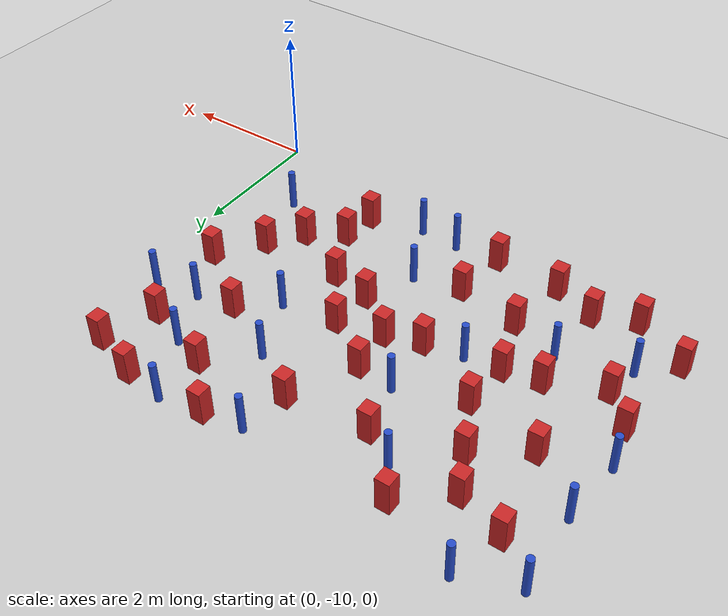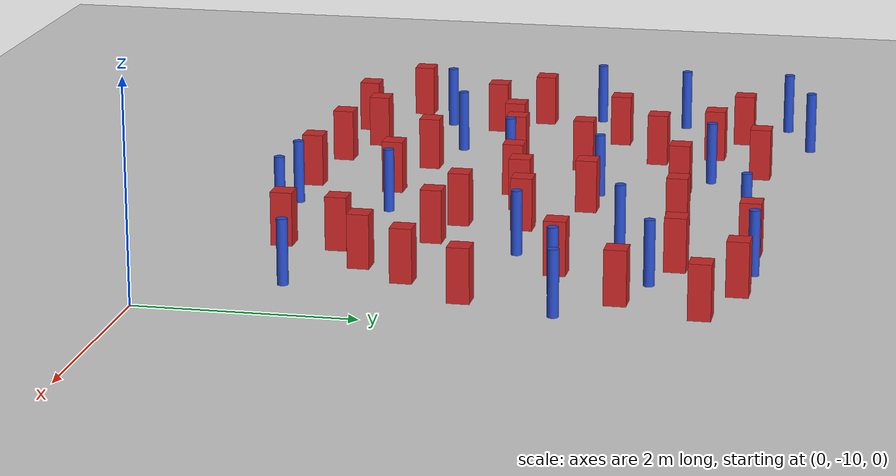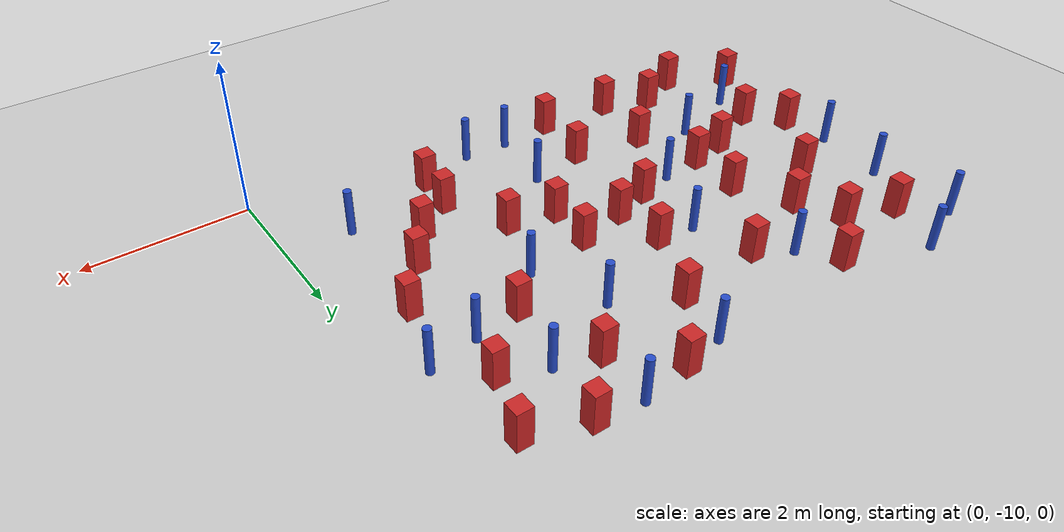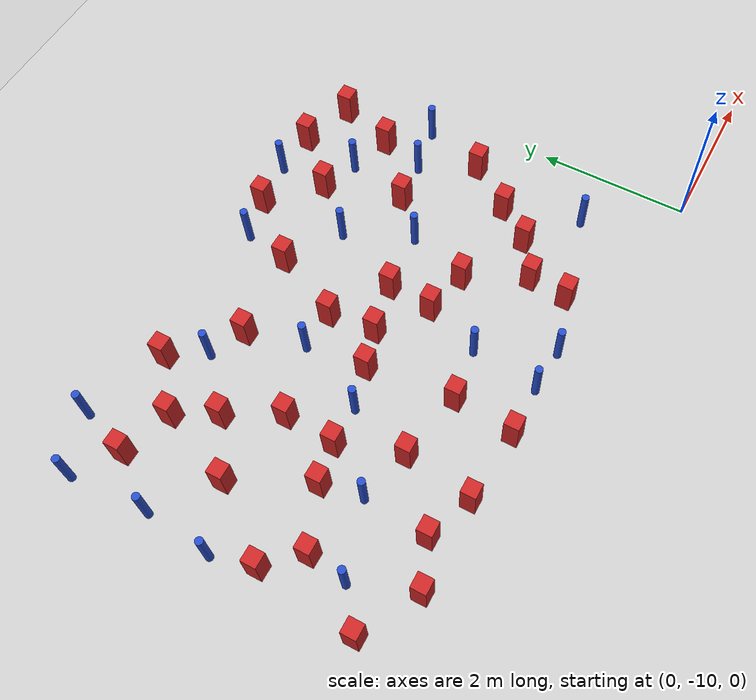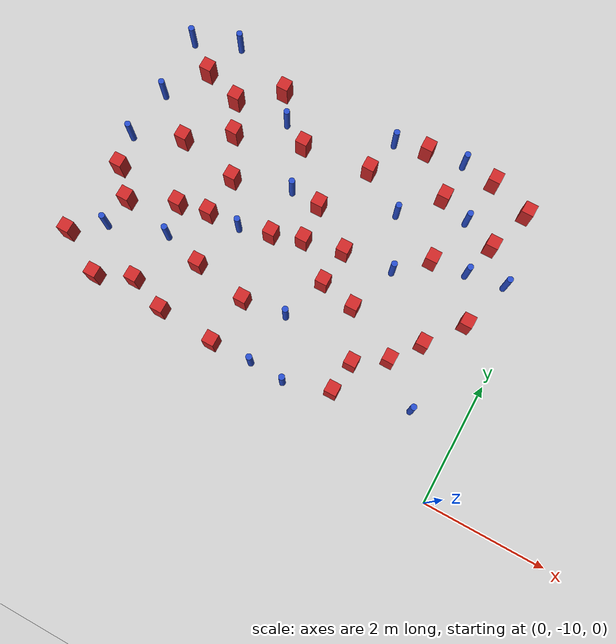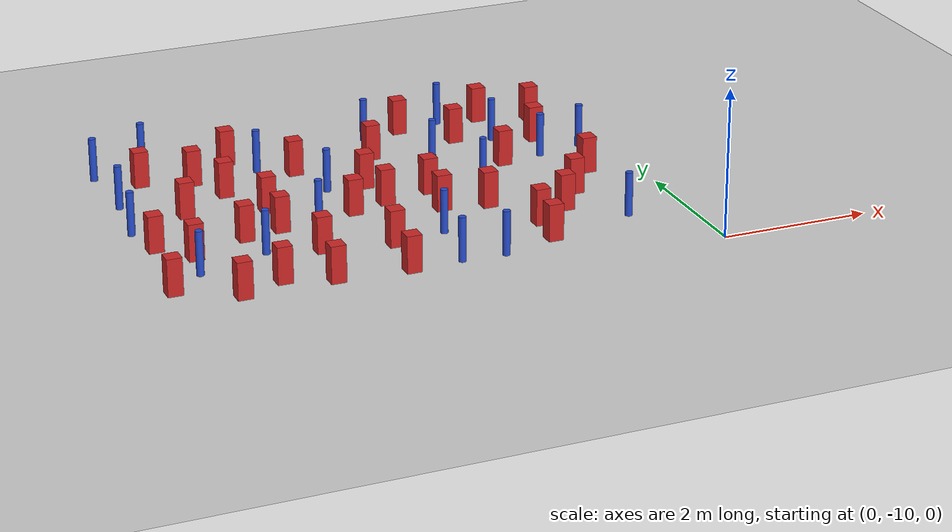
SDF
<sdf version="1.6">
 <world name="default">
  <model name="ground_plane">
   <static>1</static>
   <link name="link">
    <collision name="collision">
     <geometry><plane><normal>0 0 1</normal><size>100 100</size></plane></geometry>
     <surface><friction><ode><mu>100</mu><mu2>50</mu2></ode></friction></surface>
    </collision>
    <visual name="visual">
     <cast_shadows>0</cast_shadows>
     <geometry><plane><normal>0 0 1</normal><size>100 100</size></plane></geometry>
     <material>
      <ambient>1.0 1.0 1.0 1.0</ambient>
      <diffuse>0.8 0.8 0.8 1.0</diffuse>
      <specular>0.01 0.01 0.01 1.000000</specular>
     </material>
    </visual>
   </link>
  </model>
  <model name="square_post_obstacle0">
   <static>true</static>
   <pose>-5.41311014788 -6.22488817365 -6.11067671241e-07 -5.50515727128e-06 -8.79689657224e-07 2.37013304536e-05</pose>
   <link name="link">
    <pose>0 0 0.25 0 -0 0</pose>
    <inertial>
     <mass>100</mass>
     <inertia>
      <ixx>0.166667</ixx>
      <ixy>0</ixy>
      <ixz>0</ixz>
      <iyy>0.166667</iyy>
      <iyz>0</iyz>
      <izz>0.166667</izz>
     </inertia>
    </inertial>
    <collision name="collision"><geometry><box><size>.2 .2 .5</size></box></geometry></collision>
    <visual name="visual">
     <geometry><box><size>.2 .2 .5</size></box></geometry>
     <material>
      <script><name>Gazebo/Red</name><uri>file://media/materials/scripts/gazebo.material</uri></script>
     </material>
    </visual>
   </link>
  </model>
  <model name="square_post_obstacle6">
   <static>true</static>
   <pose>-1.96284381164 -8.66067256167 -6.11067671241e-07 -5.50515727128e-06 -8.79689657224e-07 2.37013304536e-05</pose>
   <link name="link">
    <pose>0 0 0.25 0 -0 0</pose>
    <inertial>
     <mass>100</mass>
     <inertia>
      <ixx>0.166667</ixx>
      <ixy>0</ixy>
      <ixz>0</ixz>
      <iyy>0.166667</iyy>
      <iyz>0</iyz>
      <izz>0.166667</izz>
     </inertia>
    </inertial>
    <collision name="collision"><geometry><box><size>.2 .2 .5</size></box></geometry></collision>
    <visual name="visual">
     <geometry><box><size>.2 .2 .5</size></box></geometry>
     <material>
      <script><name>Gazebo/Red</name><uri>file://media/materials/scripts/gazebo.material</uri></script>
     </material>
    </visual>
   </link>
  </model>
  <model name="square_post_obstacle13">
   <static>true</static>
   <pose>-3.61502706013 -6.64984049506 -6.11067671241e-07 -5.50515727128e-06 -8.79689657224e-07 2.37013304536e-05</pose>
   <link name="link">
    <pose>0 0 0.25 0 -0 0</pose>
    <inertial>
     <mass>100</mass>
     <inertia>
      <ixx>0.166667</ixx>
      <ixy>0</ixy>
      <ixz>0</ixz>
      <iyy>0.166667</iyy>
      <iyz>0</iyz>
      <izz>0.166667</izz>
     </inertia>
    </inertial>
    <collision name="collision"><geometry><box><size>.2 .2 .5</size></box></geometry></collision>
    <visual name="visual">
     <geometry><box><size>.2 .2 .5</size></box></geometry>
     <material>
      <script><name>Gazebo/Red</name><uri>file://media/materials/scripts/gazebo.material</uri></script>
     </material>
    </visual>
   </link>
  </model>
  <model name="pole_obstacle19">
   <static>true</static>
   <pose>-3.04301555067 -5.08760695318 -9.47619616065e-06 5.49618799738e-07 2.3631041406e-07 -1.55090534801e-07</pose>
   <link name="link">
    <pose>0 0 0.3 0 -0 0</pose>
    <inertial>
     <mass>1</mass>
     <inertia><ixx>0.145833</ixx><ixy>0</ixy><ixz>0</ixz><iyy>0.145833</iyy><iyz>0</iyz><izz>0.125</izz></inertia>
    </inertial>
    <collision name="collision">
     <geometry><cylinder><radius>0.05</radius><length>.6</length></cylinder></geometry>
    </collision>
    <visual name="visual">
     <geometry><cylinder><radius>0.05</radius><length>.6</length></cylinder></geometry>
     <material>
      <script><name>Gazebo/Blue</name><uri>file://media/materials/scripts/gazebo.material</uri></script>
     </material>
    </visual>
   </link>
  </model>
  <model name="pole_obstacle23">
   <static>true</static>
   <pose>-1.02687091711 -6.53148259421 -9.47619616065e-06 5.49618799737e-07 2.36310414062e-07 -1.55090534799e-07</pose>
   <link name="link">
    <pose>0 0 0.3 0 -0 0</pose>
    <inertial>
     <mass>1</mass>
     <inertia><ixx>0.145833</ixx><ixy>0</ixy><ixz>0</ixz><iyy>0.145833</iyy><iyz>0</iyz><izz>0.125</izz></inertia>
    </inertial>
    <collision name="collision">
     <geometry><cylinder><radius>0.05</radius><length>.6</length></cylinder></geometry>
    </collision>
    <visual name="visual">
     <geometry><cylinder><radius>0.05</radius><length>.6</length></cylinder></geometry>
     <material>
      <script><name>Gazebo/Blue</name><uri>file://media/materials/scripts/gazebo.material</uri></script>
     </material>
    </visual>
   </link>
  </model>
  <model name="pole_obstacle28">
   <static>true</static>
   <pose>-0.816552920662 -8.87406643641 -9.47619616065e-06 5.49618799737e-07 2.36310414038e-07 -1.55090534813e-07</pose>
   <link name="link">
    <pose>0 0 0.3 0 -0 0</pose>
    <inertial>
     <mass>1</mass>
     <inertia><ixx>0.145833</ixx><ixy>0</ixy><ixz>0</ixz><iyy>0.145833</iyy><iyz>0</iyz><izz>0.125</izz></inertia>
    </inertial>
    <collision name="collision">
     <geometry><cylinder><radius>0.05</radius><length>.6</length></cylinder></geometry>
    </collision>
    <visual name="visual">
     <geometry><cylinder><radius>0.05</radius><length>.6</length></cylinder></geometry>
     <material>
      <script><name>Gazebo/Blue</name><uri>file://media/materials/scripts/gazebo.material</uri></script>
     </material>
    </visual>
   </link>
  </model>
  <model name="square_post_obstacle22">
   <static>true</static>
   <pose>-4.32448612575 -5.86166421642 -6.11067671241e-07 -5.50515727128e-06 -8.79689657224e-07 2.37013304536e-05</pose>
   <link name="link">
    <pose>0 0 0.25 0 -0 0</pose>
    <inertial>
     <mass>100</mass>
     <inertia>
      <ixx>0.166667</ixx>
      <ixy>0</ixy>
      <ixz>0</ixz>
      <iyy>0.166667</iyy>
      <iyz>0</iyz>
      <izz>0.166667</izz>
     </inertia>
    </inertial>
    <collision name="collision"><geometry><box><size>.2 .2 .5</size></box></geometry></collision>
    <visual name="visual">
     <geometry><box><size>.2 .2 .5</size></box></geometry>
     <material>
      <script><name>Gazebo/Red</name><uri>file://media/materials/scripts/gazebo.material</uri></script>
     </material>
    </visual>
   </link>
  </model>
  <model name="square_post_obstacle30">
   <static>true</static>
   <pose>-5.05872628069 -6.9136298005 -6.11067671241e-07 -5.50515727128e-06 -8.79689657224e-07 2.37013304536e-05</pose>
   <link name="link">
    <pose>0 0 0.25 0 -0 0</pose>
    <inertial>
     <mass>100</mass>
     <inertia>
      <ixx>0.166667</ixx>
      <ixy>0</ixy>
      <ixz>0</ixz>
      <iyy>0.166667</iyy>
      <iyz>0</iyz>
      <izz>0.166667</izz>
     </inertia>
    </inertial>
    <collision name="collision"><geometry><box><size>.2 .2 .5</size></box></geometry></collision>
    <visual name="visual">
     <geometry><box><size>.2 .2 .5</size></box></geometry>
     <material>
      <script><name>Gazebo/Red</name><uri>file://media/materials/scripts/gazebo.material</uri></script>
     </material>
    </visual>
   </link>
  </model>
  <model name="pole_obstacle55">
   <static>true</static>
   <pose>-3.21791712507 -8.48004951929 -9.4761961606e-06 5.49618799729e-07 2.36310414e-07 -1.55090534824e-07</pose>
   <link name="link">
    <pose>0 0 0.3 0 -0 0</pose>
    <inertial>
     <mass>1</mass>
     <inertia><ixx>0.145833</ixx><ixy>0</ixy><ixz>0</ixz><iyy>0.145833</iyy><iyz>0</iyz><izz>0.125</izz></inertia>
    </inertial>
    <collision name="collision">
     <geometry><cylinder><radius>0.05</radius><length>.6</length></cylinder></geometry>
    </collision>
    <visual name="visual">
     <geometry><cylinder><radius>0.05</radius><length>.6</length></cylinder></geometry>
     <material>
      <script><name>Gazebo/Blue</name><uri>file://media/materials/scripts/gazebo.material</uri></script>
     </material>
    </visual>
   </link>
  </model>
  <model name="pole_obstacle61">
   <static>true</static>
   <pose>-4.579242506 -7.5702696461 -9.47619616065e-06 5.49618799737e-07 2.36310414037e-07 -1.55090534814e-07</pose>
   <link name="link">
    <pose>0 0 0.3 0 -0 0</pose>
    <inertial>
     <mass>1</mass>
     <inertia><ixx>0.145833</ixx><ixy>0</ixy><ixz>0</ixz><iyy>0.145833</iyy><iyz>0</iyz><izz>0.125</izz></inertia>
    </inertial>
    <collision name="collision">
     <geometry><cylinder><radius>0.05</radius><length>.6</length></cylinder></geometry>
    </collision>
    <visual name="visual">
     <geometry><cylinder><radius>0.05</radius><length>.6</length></cylinder></geometry>
     <material>
      <script><name>Gazebo/Blue</name><uri>file://media/materials/scripts/gazebo.material</uri></script>
     </material>
    </visual>
   </link>
  </model>
  <model name="square_post_obstacle48">
   <static>true</static>
   <pose>-4.83346753444 -8.41810958307 -6.11067671241e-07 -5.50515727128e-06 -8.79689657224e-07 2.37013304536e-05</pose>
   <link name="link">
    <pose>0 0 0.25 0 -0 0</pose>
    <inertial>
     <mass>100</mass>
     <inertia>
      <ixx>0.166667</ixx>
      <ixy>0</ixy>
      <ixz>0</ixz>
      <iyy>0.166667</iyy>
      <iyz>0</iyz>
      <izz>0.166667</izz>
     </inertia>
    </inertial>
    <collision name="collision"><geometry><box><size>.2 .2 .5</size></box></geometry></collision>
    <visual name="visual">
     <geometry><box><size>.2 .2 .5</size></box></geometry>
     <material>
      <script><name>Gazebo/Red</name><uri>file://media/materials/scripts/gazebo.material</uri></script>
     </material>
    </visual>
   </link>
  </model>
  <model name="square_post_obstacle55">
   <static>true</static>
   <pose>-5.682097409 -5.68438011685 -6.11067671241e-07 -5.50515727128e-06 -8.79689657224e-07 2.37013304536e-05</pose>
   <link name="link">
    <pose>0 0 0.25 0 -0 0</pose>
    <inertial>
     <mass>100</mass>
     <inertia>
      <ixx>0.166667</ixx>
      <ixy>0</ixy>
      <ixz>0</ixz>
      <iyy>0.166667</iyy>
      <iyz>0</iyz>
      <izz>0.166667</izz>
     </inertia>
    </inertial>
    <collision name="collision"><geometry><box><size>.2 .2 .5</size></box></geometry></collision>
    <visual name="visual">
     <geometry><box><size>.2 .2 .5</size></box></geometry>
     <material>
      <script><name>Gazebo/Red</name><uri>file://media/materials/scripts/gazebo.material</uri></script>
     </material>
    </visual>
   </link>
  </model>
  <model name="pole_obstacle71">
   <static>true</static>
   <pose>-6.85620045184 -5.06821276954 -9.47619616065e-06 5.49618799737e-07 2.36310414037e-07 -1.55090534814e-07</pose>
   <link name="link">
    <pose>0 0 0.3 0 -0 0</pose>
    <inertial>
     <mass>1</mass>
     <inertia><ixx>0.145833</ixx><ixy>0</ixy><ixz>0</ixz><iyy>0.145833</iyy><iyz>0</iyz><izz>0.125</izz></inertia>
    </inertial>
    <collision name="collision">
     <geometry><cylinder><radius>0.05</radius><length>.6</length></cylinder></geometry>
    </collision>
    <visual name="visual">
     <geometry><cylinder><radius>0.05</radius><length>.6</length></cylinder></geometry>
     <material>
      <script><name>Gazebo/Blue</name><uri>file://media/materials/scripts/gazebo.material</uri></script>
     </material>
    </visual>
   </link>
  </model>
  <model name="pole_obstacle77">
   <static>true</static>
   <pose>-6.80586628586 -6.1249826385 -9.47619616065e-06 5.49618799737e-07 2.36310414037e-07 -1.55090534814e-07</pose>
   <link name="link">
    <pose>0 0 0.3 0 -0 0</pose>
    <inertial>
     <mass>1</mass>
     <inertia><ixx>0.145833</ixx><ixy>0</ixy><ixz>0</ixz><iyy>0.145833</iyy><iyz>0</iyz><izz>0.125</izz></inertia>
    </inertial>
    <collision name="collision">
     <geometry><cylinder><radius>0.05</radius><length>.6</length></cylinder></geometry>
    </collision>
    <visual name="visual">
     <geometry><cylinder><radius>0.05</radius><length>.6</length></cylinder></geometry>
     <material>
      <script><name>Gazebo/Blue</name><uri>file://media/materials/scripts/gazebo.material</uri></script>
     </material>
    </visual>
   </link>
  </model>
  <model name="square_post_obstacle66">
   <static>true</static>
   <pose>-0.617969596172 -5.19717893296 -6.11067671241e-07 -5.50515727128e-06 -8.79689657224e-07 2.37013304536e-05</pose>
   <link name="link">
    <pose>0 0 0.25 0 -0 0</pose>
    <inertial>
     <mass>100</mass>
     <inertia>
      <ixx>0.166667</ixx>
      <ixy>0</ixy>
      <ixz>0</ixz>
      <iyy>0.166667</iyy>
      <iyz>0</iyz>
      <izz>0.166667</izz>
     </inertia>
    </inertial>
    <collision name="collision"><geometry><box><size>.2 .2 .5</size></box></geometry></collision>
    <visual name="visual">
     <geometry><box><size>.2 .2 .5</size></box></geometry>
     <material>
      <script><name>Gazebo/Red</name><uri>file://media/materials/scripts/gazebo.material</uri></script>
     </material>
    </visual>
   </link>
  </model>
  <model name="square_post_obstacle71">
   <static>true</static>
   <pose>-3.55550508577 -7.27607686553 -6.11067671241e-07 -5.50515727128e-06 -8.79689657224e-07 2.37013304536e-05</pose>
   <link name="link">
    <pose>0 0 0.25 0 -0 0</pose>
    <inertial>
     <mass>100</mass>
     <inertia>
      <ixx>0.166667</ixx>
      <ixy>0</ixy>
      <ixz>0</ixz>
      <iyy>0.166667</iyy>
      <iyz>0</iyz>
      <izz>0.166667</izz>
     </inertia>
    </inertial>
    <collision name="collision"><geometry><box><size>.2 .2 .5</size></box></geometry></collision>
    <visual name="visual">
     <geometry><box><size>.2 .2 .5</size></box></geometry>
     <material>
      <script><name>Gazebo/Red</name><uri>file://media/materials/scripts/gazebo.material</uri></script>
     </material>
    </visual>
   </link>
  </model>
  <model name="square_post_obstacle77">
   <static>true</static>
   <pose>-2.01722943241 -9.1814327794 -6.11067671241e-07 -5.50515727128e-06 -8.79689657224e-07 2.37013304536e-05</pose>
   <link name="link">
    <pose>0 0 0.25 0 -0 0</pose>
    <inertial>
     <mass>100</mass>
     <inertia>
      <ixx>0.166667</ixx>
      <ixy>0</ixy>
      <ixz>0</ixz>
      <iyy>0.166667</iyy>
      <iyz>0</iyz>
      <izz>0.166667</izz>
     </inertia>
    </inertial>
    <collision name="collision"><geometry><box><size>.2 .2 .5</size></box></geometry></collision>
    <visual name="visual">
     <geometry><box><size>.2 .2 .5</size></box></geometry>
     <material>
      <script><name>Gazebo/Red</name><uri>file://media/materials/scripts/gazebo.material</uri></script>
     </material>
    </visual>
   </link>
  </model>
  <model name="square_post_obstacle91">
   <static>true</static>
   <pose>-6.17463970401 -9.34130717842 -6.11067671241e-07 -5.50515727128e-06 -8.79689657224e-07 2.37013304536e-05</pose>
   <link name="link">
    <pose>0 0 0.25 0 -0 0</pose>
    <inertial>
     <mass>100</mass>
     <inertia>
      <ixx>0.166667</ixx>
      <ixy>0</ixy>
      <ixz>0</ixz>
      <iyy>0.166667</iyy>
      <iyz>0</iyz>
      <izz>0.166667</izz>
     </inertia>
    </inertial>
    <collision name="collision"><geometry><box><size>.2 .2 .5</size></box></geometry></collision>
    <visual name="visual">
     <geometry><box><size>.2 .2 .5</size></box></geometry>
     <material>
      <script><name>Gazebo/Red</name><uri>file://media/materials/scripts/gazebo.material</uri></script>
     </material>
    </visual>
   </link>
  </model>
  <model name="pole_obstacle107">
   <static>true</static>
   <pose>-6.46424772799 -8.53479852992 -9.47619616065e-06 5.49618799737e-07 2.36310414065e-07 -1.55090534796e-07</pose>
   <link name="link">
    <pose>0 0 0.3 0 -0 0</pose>
    <inertial>
     <mass>1</mass>
     <inertia><ixx>0.145833</ixx><ixy>0</ixy><ixz>0</ixz><iyy>0.145833</iyy><iyz>0</iyz><izz>0.125</izz></inertia>
    </inertial>
    <collision name="collision">
     <geometry><cylinder><radius>0.05</radius><length>.6</length></cylinder></geometry>
    </collision>
    <visual name="visual">
     <geometry><cylinder><radius>0.05</radius><length>.6</length></cylinder></geometry>
     <material>
      <script><name>Gazebo/Blue</name><uri>file://media/materials/scripts/gazebo.material</uri></script>
     </material>
    </visual>
   </link>
  </model>
  <model name="pole_obstacle109">
   <static>true</static>
   <pose>-5.51121036597 -8.22721236023 -9.47619616065e-06 5.49618799737e-07 2.36310414065e-07 -1.55090534796e-07</pose>
   <link name="link">
    <pose>0 0 0.3 0 -0 0</pose>
    <inertial>
     <mass>1</mass>
     <inertia><ixx>0.145833</ixx><ixy>0</ixy><ixz>0</ixz><iyy>0.145833</iyy><iyz>0</iyz><izz>0.125</izz></inertia>
    </inertial>
    <collision name="collision">
     <geometry><cylinder><radius>0.05</radius><length>.6</length></cylinder></geometry>
    </collision>
    <visual name="visual">
     <geometry><cylinder><radius>0.05</radius><length>.6</length></cylinder></geometry>
     <material>
      <script><name>Gazebo/Blue</name><uri>file://media/materials/scripts/gazebo.material</uri></script>
     </material>
    </visual>
   </link>
  </model>
  <model name="square_post_obstacle106">
   <static>true</static>
   <pose>-3.17893663639 -5.73304695819 -6.11067671241e-07 -5.50515727128e-06 -8.79689657224e-07 2.37013304536e-05</pose>
   <link name="link">
    <pose>0 0 0.25 0 -0 0</pose>
    <inertial>
     <mass>100</mass>
     <inertia>
      <ixx>0.166667</ixx>
      <ixy>0</ixy>
      <ixz>0</ixz>
      <iyy>0.166667</iyy>
      <iyz>0</iyz>
      <izz>0.166667</izz>
     </inertia>
    </inertial>
    <collision name="collision"><geometry><box><size>.2 .2 .5</size></box></geometry></collision>
    <visual name="visual">
     <geometry><box><size>.2 .2 .5</size></box></geometry>
     <material>
      <script><name>Gazebo/Red</name><uri>file://media/materials/scripts/gazebo.material</uri></script>
     </material>
    </visual>
   </link>
  </model>
  <model name="square_post_obstacle116">
   <static>true</static>
   <pose>-2.50485919307 -4.98213655029 -6.11067671241e-07 -5.50515727128e-06 -8.79689657224e-07 2.37013304536e-05</pose>
   <link name="link">
    <pose>0 0 0.25 0 -0 0</pose>
    <inertial>
     <mass>100</mass>
     <inertia>
      <ixx>0.166667</ixx>
      <ixy>0</ixy>
      <ixz>0</ixz>
      <iyy>0.166667</iyy>
      <iyz>0</iyz>
      <izz>0.166667</izz>
     </inertia>
    </inertial>
    <collision name="collision"><geometry><box><size>.2 .2 .5</size></box></geometry></collision>
    <visual name="visual">
     <geometry><box><size>.2 .2 .5</size></box></geometry>
     <material>
      <script><name>Gazebo/Red</name><uri>file://media/materials/scripts/gazebo.material</uri></script>
     </material>
    </visual>
   </link>
  </model>
  <model name="square_post_obstacle117">
   <static>true</static>
   <pose>-1.60845743251 -6.60109290122 -6.11067671241e-07 -5.50515727128e-06 -8.79689657224e-07 2.37013304536e-05</pose>
   <link name="link">
    <pose>0 0 0.25 0 -0 0</pose>
    <inertial>
     <mass>100</mass>
     <inertia>
      <ixx>0.166667</ixx>
      <ixy>0</ixy>
      <ixz>0</ixz>
      <iyy>0.166667</iyy>
      <iyz>0</iyz>
      <izz>0.166667</izz>
     </inertia>
    </inertial>
    <collision name="collision"><geometry><box><size>.2 .2 .5</size></box></geometry></collision>
    <visual name="visual">
     <geometry><box><size>.2 .2 .5</size></box></geometry>
     <material>
      <script><name>Gazebo/Red</name><uri>file://media/materials/scripts/gazebo.material</uri></script>
     </material>
    </visual>
   </link>
  </model>
  <model name="square_post_obstacle119">
   <static>true</static>
   <pose>-6.92350910276 -8.9214122252 -6.11067671241e-07 -5.50515727128e-06 -8.79689657224e-07 2.37013304536e-05</pose>
   <link name="link">
    <pose>0 0 0.25 0 -0 0</pose>
    <inertial>
     <mass>100</mass>
     <inertia>
      <ixx>0.166667</ixx>
      <ixy>0</ixy>
      <ixz>0</ixz>
      <iyy>0.166667</iyy>
      <iyz>0</iyz>
      <izz>0.166667</izz>
     </inertia>
    </inertial>
    <collision name="collision"><geometry><box><size>.2 .2 .5</size></box></geometry></collision>
    <visual name="visual">
     <geometry><box><size>.2 .2 .5</size></box></geometry>
     <material>
      <script><name>Gazebo/Red</name><uri>file://media/materials/scripts/gazebo.material</uri></script>
     </material>
    </visual>
   </link>
  </model>
  <model name="pole_obstacle126">
   <static>true</static>
   <pose>-0.401956936372 -6.41734114119 -9.47619616065e-06 5.49618799737e-07 2.36310414065e-07 -1.55090534796e-07</pose>
   <link name="link">
    <pose>0 0 0.3 0 -0 0</pose>
    <inertial>
     <mass>1</mass>
     <inertia><ixx>0.145833</ixx><ixy>0</ixy><ixz>0</ixz><iyy>0.145833</iyy><iyz>0</iyz><izz>0.125</izz></inertia>
    </inertial>
    <collision name="collision">
     <geometry><cylinder><radius>0.05</radius><length>.6</length></cylinder></geometry>
    </collision>
    <visual name="visual">
     <geometry><cylinder><radius>0.05</radius><length>.6</length></cylinder></geometry>
     <material>
      <script><name>Gazebo/Blue</name><uri>file://media/materials/scripts/gazebo.material</uri></script>
     </material>
    </visual>
   </link>
  </model>
  <model name="square_post_obstacle123">
   <static>true</static>
   <pose>-2.35750667162 -7.87090037879 -6.11067671241e-07 -5.50515727128e-06 -8.79689657224e-07 2.37013304536e-05</pose>
   <link name="link">
    <pose>0 0 0.25 0 -0 0</pose>
    <inertial>
     <mass>100</mass>
     <inertia>
      <ixx>0.166667</ixx>
      <ixy>0</ixy>
      <ixz>0</ixz>
      <iyy>0.166667</iyy>
      <iyz>0</iyz>
      <izz>0.166667</izz>
     </inertia>
    </inertial>
    <collision name="collision"><geometry><box><size>.2 .2 .5</size></box></geometry></collision>
    <visual name="visual">
     <geometry><box><size>.2 .2 .5</size></box></geometry>
     <material>
      <script><name>Gazebo/Red</name><uri>file://media/materials/scripts/gazebo.material</uri></script>
     </material>
    </visual>
   </link>
  </model>
  <model name="square_post_obstacle124">
   <static>true</static>
   <pose>-1.13069740549 -7.87439655646 -6.11067671241e-07 -5.50515727128e-06 -8.79689657224e-07 2.37013304536e-05</pose>
   <link name="link">
    <pose>0 0 0.25 0 -0 0</pose>
    <inertial>
     <mass>100</mass>
     <inertia>
      <ixx>0.166667</ixx>
      <ixy>0</ixy>
      <ixz>0</ixz>
      <iyy>0.166667</iyy>
      <iyz>0</iyz>
      <izz>0.166667</izz>
     </inertia>
    </inertial>
    <collision name="collision"><geometry><box><size>.2 .2 .5</size></box></geometry></collision>
    <visual name="visual">
     <geometry><box><size>.2 .2 .5</size></box></geometry>
     <material>
      <script><name>Gazebo/Red</name><uri>file://media/materials/scripts/gazebo.material</uri></script>
     </material>
    </visual>
   </link>
  </model>
  <model name="pole_obstacle129">
   <static>true</static>
   <pose>-2.08143887382 -7.04397313999 -9.47619616065e-06 5.49618799738e-07 2.3631041406e-07 -1.55090534801e-07</pose>
   <link name="link">
    <pose>0 0 0.3 0 -0 0</pose>
    <inertial>
     <mass>1</mass>
     <inertia><ixx>0.145833</ixx><ixy>0</ixy><ixz>0</ixz><iyy>0.145833</iyy><iyz>0</iyz><izz>0.125</izz></inertia>
    </inertial>
    <collision name="collision">
     <geometry><cylinder><radius>0.05</radius><length>.6</length></cylinder></geometry>
    </collision>
    <visual name="visual">
     <geometry><cylinder><radius>0.05</radius><length>.6</length></cylinder></geometry>
     <material>
      <script><name>Gazebo/Blue</name><uri>file://media/materials/scripts/gazebo.material</uri></script>
     </material>
    </visual>
   </link>
  </model>
  <model name="pole_obstacle133">
   <static>true</static>
   <pose>-2.76223953604 -9.418098749 -9.4761961606e-06 5.49618799729e-07 2.36310414e-07 -1.55090534824e-07</pose>
   <link name="link">
    <pose>0 0 0.3 0 -0 0</pose>
    <inertial>
     <mass>1</mass>
     <inertia><ixx>0.145833</ixx><ixy>0</ixy><ixz>0</ixz><iyy>0.145833</iyy><iyz>0</iyz><izz>0.125</izz></inertia>
    </inertial>
    <collision name="collision">
     <geometry><cylinder><radius>0.05</radius><length>.6</length></cylinder></geometry>
    </collision>
    <visual name="visual">
     <geometry><cylinder><radius>0.05</radius><length>.6</length></cylinder></geometry>
     <material>
      <script><name>Gazebo/Blue</name><uri>file://media/materials/scripts/gazebo.material</uri></script>
     </material>
    </visual>
   </link>
  </model>
  <model name="square_post_obstacle133">
   <static>true</static>
   <pose>-3.92583869752 -8.58807866959 -6.11067671241e-07 -5.50515727128e-06 -8.79689657224e-07 2.37013304536e-05</pose>
   <link name="link">
    <pose>0 0 0.25 0 -0 0</pose>
    <inertial>
     <mass>100</mass>
     <inertia>
      <ixx>0.166667</ixx>
      <ixy>0</ixy>
      <ixz>0</ixz>
      <iyy>0.166667</iyy>
      <iyz>0</iyz>
      <izz>0.166667</izz>
     </inertia>
    </inertial>
    <collision name="collision"><geometry><box><size>.2 .2 .5</size></box></geometry></collision>
    <visual name="visual">
     <geometry><box><size>.2 .2 .5</size></box></geometry>
     <material>
      <script><name>Gazebo/Red</name><uri>file://media/materials/scripts/gazebo.material</uri></script>
     </material>
    </visual>
   </link>
  </model>
  <model name="square_post_obstacle137">
   <static>true</static>
   <pose>-5.1069942452 -7.59860497143 -6.11067671241e-07 -5.50515727128e-06 -8.79689657224e-07 2.37013304536e-05</pose>
   <link name="link">
    <pose>0 0 0.25 0 -0 0</pose>
    <inertial>
     <mass>100</mass>
     <inertia>
      <ixx>0.166667</ixx>
      <ixy>0</ixy>
      <ixz>0</ixz>
      <iyy>0.166667</iyy>
      <iyz>0</iyz>
      <izz>0.166667</izz>
     </inertia>
    </inertial>
    <collision name="collision"><geometry><box><size>.2 .2 .5</size></box></geometry></collision>
    <visual name="visual">
     <geometry><box><size>.2 .2 .5</size></box></geometry>
     <material>
      <script><name>Gazebo/Red</name><uri>file://media/materials/scripts/gazebo.material</uri></script>
     </material>
    </visual>
   </link>
  </model>
  <model name="pole_obstacle152">
   <static>true</static>
   <pose>-1.4096976209 -5.74707005191 -9.47619616065e-06 5.49618799737e-07 2.36310414061e-07 -1.550905348e-07</pose>
   <link name="link">
    <pose>0 0 0.3 0 -0 0</pose>
    <inertial>
     <mass>1</mass>
     <inertia><ixx>0.145833</ixx><ixy>0</ixy><ixz>0</ixz><iyy>0.145833</iyy><iyz>0</iyz><izz>0.125</izz></inertia>
    </inertial>
    <collision name="collision">
     <geometry><cylinder><radius>0.05</radius><length>.6</length></cylinder></geometry>
    </collision>
    <visual name="visual">
     <geometry><cylinder><radius>0.05</radius><length>.6</length></cylinder></geometry>
     <material>
      <script><name>Gazebo/Blue</name><uri>file://media/materials/scripts/gazebo.material</uri></script>
     </material>
    </visual>
   </link>
  </model>
  <model name="square_post_obstacle145">
   <static>true</static>
   <pose>-5.5877905059 -9.10197902618 -6.11067671241e-07 -5.50515727128e-06 -8.79689657224e-07 2.37013304536e-05</pose>
   <link name="link">
    <pose>0 0 0.25 0 -0 0</pose>
    <inertial>
     <mass>100</mass>
     <inertia>
      <ixx>0.166667</ixx>
      <ixy>0</ixy>
      <ixz>0</ixz>
      <iyy>0.166667</iyy>
      <iyz>0</iyz>
      <izz>0.166667</izz>
     </inertia>
    </inertial>
    <collision name="collision"><geometry><box><size>.2 .2 .5</size></box></geometry></collision>
    <visual name="visual">
     <geometry><box><size>.2 .2 .5</size></box></geometry>
     <material>
      <script><name>Gazebo/Red</name><uri>file://media/materials/scripts/gazebo.material</uri></script>
     </material>
    </visual>
   </link>
  </model>
  <model name="square_post_obstacle149">
   <static>true</static>
   <pose>-5.61533172119 -7.70278485231 -6.11067671241e-07 -5.50515727128e-06 -8.79689657224e-07 2.37013304536e-05</pose>
   <link name="link">
    <pose>0 0 0.25 0 -0 0</pose>
    <inertial>
     <mass>100</mass>
     <inertia>
      <ixx>0.166667</ixx>
      <ixy>0</ixy>
      <ixz>0</ixz>
      <iyy>0.166667</iyy>
      <iyz>0</iyz>
      <izz>0.166667</izz>
     </inertia>
    </inertial>
    <collision name="collision"><geometry><box><size>.2 .2 .5</size></box></geometry></collision>
    <visual name="visual">
     <geometry><box><size>.2 .2 .5</size></box></geometry>
     <material>
      <script><name>Gazebo/Red</name><uri>file://media/materials/scripts/gazebo.material</uri></script>
     </material>
    </visual>
   </link>
  </model>
  <model name="pole_obstacle154">
   <static>true</static>
   <pose>-4.12451403573 -6.61291230156 -9.47619616065e-06 5.49618799737e-07 2.36310414037e-07 -1.55090534814e-07</pose>
   <link name="link">
    <pose>0 0 0.3 0 -0 0</pose>
    <inertial>
     <mass>1</mass>
     <inertia><ixx>0.145833</ixx><ixy>0</ixy><ixz>0</ixz><iyy>0.145833</iyy><iyz>0</iyz><izz>0.125</izz></inertia>
    </inertial>
    <collision name="collision">
     <geometry><cylinder><radius>0.05</radius><length>.6</length></cylinder></geometry>
    </collision>
    <visual name="visual">
     <geometry><cylinder><radius>0.05</radius><length>.6</length></cylinder></geometry>
     <material>
      <script><name>Gazebo/Blue</name><uri>file://media/materials/scripts/gazebo.material</uri></script>
     </material>
    </visual>
   </link>
  </model>
  <model name="pole_obstacle159">
   <static>true</static>
   <pose>-3.34332686057 -9.38565405298 -9.4761961606e-06 5.49618799729e-07 2.36310414e-07 -1.55090534824e-07</pose>
   <link name="link">
    <pose>0 0 0.3 0 -0 0</pose>
    <inertial>
     <mass>1</mass>
     <inertia><ixx>0.145833</ixx><ixy>0</ixy><ixz>0</ixz><iyy>0.145833</iyy><iyz>0</iyz><izz>0.125</izz></inertia>
    </inertial>
    <collision name="collision">
     <geometry><cylinder><radius>0.05</radius><length>.6</length></cylinder></geometry>
    </collision>
    <visual name="visual">
     <geometry><cylinder><radius>0.05</radius><length>.6</length></cylinder></geometry>
     <material>
      <script><name>Gazebo/Blue</name><uri>file://media/materials/scripts/gazebo.material</uri></script>
     </material>
    </visual>
   </link>
  </model>
  <model name="square_post_obstacle154">
   <static>true</static>
   <pose>-1.47496679297 -8.33797658231 -6.11067671241e-07 -5.50515727128e-06 -8.79689657224e-07 2.37013304536e-05</pose>
   <link name="link">
    <pose>0 0 0.25 0 -0 0</pose>
    <inertial>
     <mass>100</mass>
     <inertia>
      <ixx>0.166667</ixx>
      <ixy>0</ixy>
      <ixz>0</ixz>
      <iyy>0.166667</iyy>
      <iyz>0</iyz>
      <izz>0.166667</izz>
     </inertia>
    </inertial>
    <collision name="collision"><geometry><box><size>.2 .2 .5</size></box></geometry></collision>
    <visual name="visual">
     <geometry><box><size>.2 .2 .5</size></box></geometry>
     <material>
      <script><name>Gazebo/Red</name><uri>file://media/materials/scripts/gazebo.material</uri></script>
     </material>
    </visual>
   </link>
  </model>
  <model name="square_post_obstacle163">
   <static>true</static>
   <pose>-6.33547477781 -5.46333368425 -6.11067671241e-07 -5.50515727128e-06 -8.79689657224e-07 2.37013304536e-05</pose>
   <link name="link">
    <pose>0 0 0.25 0 -0 0</pose>
    <inertial>
     <mass>100</mass>
     <inertia>
      <ixx>0.166667</ixx>
      <ixy>0</ixy>
      <ixz>0</ixz>
      <iyy>0.166667</iyy>
      <iyz>0</iyz>
      <izz>0.166667</izz>
     </inertia>
    </inertial>
    <collision name="collision"><geometry><box><size>.2 .2 .5</size></box></geometry></collision>
    <visual name="visual">
     <geometry><box><size>.2 .2 .5</size></box></geometry>
     <material>
      <script><name>Gazebo/Red</name><uri>file://media/materials/scripts/gazebo.material</uri></script>
     </material>
    </visual>
   </link>
  </model>
  <model name="square_post_obstacle170">
   <static>true</static>
   <pose>-2.90366939354 -7.13644680141 -6.11067671241e-07 -5.50515727128e-06 -8.79689657224e-07 2.37013304536e-05</pose>
   <link name="link">
    <pose>0 0 0.25 0 -0 0</pose>
    <inertial>
     <mass>100</mass>
     <inertia>
      <ixx>0.166667</ixx>
      <ixy>0</ixy>
      <ixz>0</ixz>
      <iyy>0.166667</iyy>
      <iyz>0</iyz>
      <izz>0.166667</izz>
     </inertia>
    </inertial>
    <collision name="collision"><geometry><box><size>.2 .2 .5</size></box></geometry></collision>
    <visual name="visual">
     <geometry><box><size>.2 .2 .5</size></box></geometry>
     <material>
      <script><name>Gazebo/Red</name><uri>file://media/materials/scripts/gazebo.material</uri></script>
     </material>
    </visual>
   </link>
  </model>
  <model name="square_post_obstacle171">
   <static>true</static>
   <pose>-2.95129999399 -7.73874344753 -6.11067671241e-07 -5.50515727128e-06 -8.79689657224e-07 2.37013304536e-05</pose>
   <link name="link">
    <pose>0 0 0.25 0 -0 0</pose>
    <inertial>
     <mass>100</mass>
     <inertia>
      <ixx>0.166667</ixx>
      <ixy>0</ixy>
      <ixz>0</ixz>
      <iyy>0.166667</iyy>
      <iyz>0</iyz>
      <izz>0.166667</izz>
     </inertia>
    </inertial>
    <collision name="collision"><geometry><box><size>.2 .2 .5</size></box></geometry></collision>
    <visual name="visual">
     <geometry><box><size>.2 .2 .5</size></box></geometry>
     <material>
      <script><name>Gazebo/Red</name><uri>file://media/materials/scripts/gazebo.material</uri></script>
     </material>
    </visual>
   </link>
  </model>
  <model name="pole_obstacle172">
   <static>true</static>
   <pose>-6.90232590119 -7.02150492126 -9.47619616065e-06 5.49618799737e-07 2.36310414037e-07 -1.55090534814e-07</pose>
   <link name="link">
    <pose>0 0 0.3 0 -0 0</pose>
    <inertial>
     <mass>1</mass>
     <inertia><ixx>0.145833</ixx><ixy>0</ixy><ixz>0</ixz><iyy>0.145833</iyy><iyz>0</iyz><izz>0.125</izz></inertia>
    </inertial>
    <collision name="collision">
     <geometry><cylinder><radius>0.05</radius><length>.6</length></cylinder></geometry>
    </collision>
    <visual name="visual">
     <geometry><cylinder><radius>0.05</radius><length>.6</length></cylinder></geometry>
     <material>
      <script><name>Gazebo/Blue</name><uri>file://media/materials/scripts/gazebo.material</uri></script>
     </material>
    </visual>
   </link>
  </model>
  <model name="pole_obstacle178">
   <static>true</static>
   <pose>-4.76575499504 -5.61616755375 -9.47619616065e-06 5.49618799737e-07 2.36310414037e-07 -1.55090534814e-07</pose>
   <link name="link">
    <pose>0 0 0.3 0 -0 0</pose>
    <inertial>
     <mass>1</mass>
     <inertia><ixx>0.145833</ixx><ixy>0</ixy><ixz>0</ixz><iyy>0.145833</iyy><iyz>0</iyz><izz>0.125</izz></inertia>
    </inertial>
    <collision name="collision">
     <geometry><cylinder><radius>0.05</radius><length>.6</length></cylinder></geometry>
    </collision>
    <visual name="visual">
     <geometry><cylinder><radius>0.05</radius><length>.6</length></cylinder></geometry>
     <material>
      <script><name>Gazebo/Blue</name><uri>file://media/materials/scripts/gazebo.material</uri></script>
     </material>
    </visual>
   </link>
  </model>
  <model name="square_post_obstacle178">
   <static>true</static>
   <pose>-6.37619550889 -8.02197546032 -6.11067671241e-07 -5.50515727128e-06 -8.79689657224e-07 2.37013304536e-05</pose>
   <link name="link">
    <pose>0 0 0.25 0 -0 0</pose>
    <inertial>
     <mass>100</mass>
     <inertia>
      <ixx>0.166667</ixx>
      <ixy>0</ixy>
      <ixz>0</ixz>
      <iyy>0.166667</iyy>
      <iyz>0</iyz>
      <izz>0.166667</izz>
     </inertia>
    </inertial>
    <collision name="collision"><geometry><box><size>.2 .2 .5</size></box></geometry></collision>
    <visual name="visual">
     <geometry><box><size>.2 .2 .5</size></box></geometry>
     <material>
      <script><name>Gazebo/Red</name><uri>file://media/materials/scripts/gazebo.material</uri></script>
     </material>
    </visual>
   </link>
  </model>
  <model name="square_post_obstacle179">
   <static>true</static>
   <pose>-4.05603963377 -7.43412358911 -6.11067671241e-07 -5.50515727128e-06 -8.79689657224e-07 2.37013304536e-05</pose>
   <link name="link">
    <pose>0 0 0.25 0 -0 0</pose>
    <inertial>
     <mass>100</mass>
     <inertia>
      <ixx>0.166667</ixx>
      <ixy>0</ixy>
      <ixz>0</ixz>
      <iyy>0.166667</iyy>
      <iyz>0</iyz>
      <izz>0.166667</izz>
     </inertia>
    </inertial>
    <collision name="collision"><geometry><box><size>.2 .2 .5</size></box></geometry></collision>
    <visual name="visual">
     <geometry><box><size>.2 .2 .5</size></box></geometry>
     <material>
      <script><name>Gazebo/Red</name><uri>file://media/materials/scripts/gazebo.material</uri></script>
     </material>
    </visual>
   </link>
  </model>
  <model name="square_post_obstacle182">
   <static>true</static>
   <pose>-4.97989114125 -9.3297484235 -6.11067671241e-07 -5.50515727128e-06 -8.79689657224e-07 2.37013304536e-05</pose>
   <link name="link">
    <pose>0 0 0.25 0 -0 0</pose>
    <inertial>
     <mass>100</mass>
     <inertia>
      <ixx>0.166667</ixx>
      <ixy>0</ixy>
      <ixz>0</ixz>
      <iyy>0.166667</iyy>
      <iyz>0</iyz>
      <izz>0.166667</izz>
     </inertia>
    </inertial>
    <collision name="collision"><geometry><box><size>.2 .2 .5</size></box></geometry></collision>
    <visual name="visual">
     <geometry><box><size>.2 .2 .5</size></box></geometry>
     <material>
      <script><name>Gazebo/Red</name><uri>file://media/materials/scripts/gazebo.material</uri></script>
     </material>
    </visual>
   </link>
  </model>
  <model name="square_post_obstacle186">
   <static>true</static>
   <pose>-0.872384373088 -5.95124926879 -6.11067671241e-07 -5.50515727128e-06 -8.79689657224e-07 2.37013304536e-05</pose>
   <link name="link">
    <pose>0 0 0.25 0 -0 0</pose>
    <inertial>
     <mass>100</mass>
     <inertia>
      <ixx>0.166667</ixx>
      <ixy>0</ixy>
      <ixz>0</ixz>
      <iyy>0.166667</iyy>
      <iyz>0</iyz>
      <izz>0.166667</izz>
     </inertia>
    </inertial>
    <collision name="collision"><geometry><box><size>.2 .2 .5</size></box></geometry></collision>
    <visual name="visual">
     <geometry><box><size>.2 .2 .5</size></box></geometry>
     <material>
      <script><name>Gazebo/Red</name><uri>file://media/materials/scripts/gazebo.material</uri></script>
     </material>
    </visual>
   </link>
  </model>
  <model name="square_post_obstacle188">
   <static>true</static>
   <pose>-4.01931639829 -9.40066429164 -6.11067671241e-07 -5.50515727128e-06 -8.79689657224e-07 2.37013304536e-05</pose>
   <link name="link">
    <pose>0 0 0.25 0 -0 0</pose>
    <inertial>
     <mass>100</mass>
     <inertia>
      <ixx>0.166667</ixx>
      <ixy>0</ixy>
      <ixz>0</ixz>
      <iyy>0.166667</iyy>
      <iyz>0</iyz>
      <izz>0.166667</izz>
     </inertia>
    </inertial>
    <collision name="collision"><geometry><box><size>.2 .2 .5</size></box></geometry></collision>
    <visual name="visual">
     <geometry><box><size>.2 .2 .5</size></box></geometry>
     <material>
      <script><name>Gazebo/Red</name><uri>file://media/materials/scripts/gazebo.material</uri></script>
     </material>
    </visual>
   </link>
  </model>
  <model name="square_post_obstacle192">
   <static>true</static>
   <pose>-1.91142042943 -5.57749967449 -6.11067671241e-07 -5.50515727128e-06 -8.79689657224e-07 2.37013304536e-05</pose>
   <link name="link">
    <pose>0 0 0.25 0 -0 0</pose>
    <inertial>
     <mass>100</mass>
     <inertia>
      <ixx>0.166667</ixx>
      <ixy>0</ixy>
      <ixz>0</ixz>
      <iyy>0.166667</iyy>
      <iyz>0</iyz>
      <izz>0.166667</izz>
     </inertia>
    </inertial>
    <collision name="collision"><geometry><box><size>.2 .2 .5</size></box></geometry></collision>
    <visual name="visual">
     <geometry><box><size>.2 .2 .5</size></box></geometry>
     <material>
      <script><name>Gazebo/Red</name><uri>file://media/materials/scripts/gazebo.material</uri></script>
     </material>
    </visual>
   </link>
  </model>
  <model name="square_post_obstacle198">
   <static>true</static>
   <pose>-6.09027474995 -6.69565485482 -6.11067671241e-07 -5.50515727128e-06 -8.79689657224e-07 2.37013304536e-05</pose>
   <link name="link">
    <pose>0 0 0.25 0 -0 0</pose>
    <inertial>
     <mass>100</mass>
     <inertia>
      <ixx>0.166667</ixx>
      <ixy>0</ixy>
      <ixz>0</ixz>
      <iyy>0.166667</iyy>
      <iyz>0</iyz>
      <izz>0.166667</izz>
     </inertia>
    </inertial>
    <collision name="collision"><geometry><box><size>.2 .2 .5</size></box></geometry></collision>
    <visual name="visual">
     <geometry><box><size>.2 .2 .5</size></box></geometry>
     <material>
      <script><name>Gazebo/Red</name><uri>file://media/materials/scripts/gazebo.material</uri></script>
     </material>
    </visual>
   </link>
  </model>
  <model name="square_post_obstacle199">
   <static>true</static>
   <pose>-1.31321259538 -4.95783753547 -6.11067671241e-07 -5.50515727128e-06 -8.79689657224e-07 2.37013304536e-05</pose>
   <link name="link">
    <pose>0 0 0.25 0 -0 0</pose>
    <inertial>
     <mass>100</mass>
     <inertia>
      <ixx>0.166667</ixx>
      <ixy>0</ixy>
      <ixz>0</ixz>
      <iyy>0.166667</iyy>
      <iyz>0</iyz>
      <izz>0.166667</izz>
     </inertia>
    </inertial>
    <collision name="collision"><geometry><box><size>.2 .2 .5</size></box></geometry></collision>
    <visual name="visual">
     <geometry><box><size>.2 .2 .5</size></box></geometry>
     <material>
      <script><name>Gazebo/Red</name><uri>file://media/materials/scripts/gazebo.material</uri></script>
     </material>
    </visual>
   </link>
  </model>
  <model name="pole_obstacle191">
   <static>true</static>
   <pose>-2.45639575094 -6.16326843316 -9.47619616065e-06 5.49618799738e-07 2.3631041406e-07 -1.55090534801e-07</pose>
   <link name="link">
    <pose>0 0 0.3 0 -0 0</pose>
    <inertial>
     <mass>1</mass>
     <inertia><ixx>0.145833</ixx><ixy>0</ixy><ixz>0</ixz><iyy>0.145833</iyy><iyz>0</iyz><izz>0.125</izz></inertia>
    </inertial>
    <collision name="collision">
     <geometry><cylinder><radius>0.05</radius><length>.6</length></cylinder></geometry>
    </collision>
    <visual name="visual">
     <geometry><cylinder><radius>0.05</radius><length>.6</length></cylinder></geometry>
     <material>
      <script><name>Gazebo/Blue</name><uri>file://media/materials/scripts/gazebo.material</uri></script>
     </material>
    </visual>
   </link>
  </model>
  <model name="square_post_obstacle202">
   <static>true</static>
   <pose>-0.675816082398 -7.27069626373 -6.11067671241e-07 -5.50515727128e-06 -8.79689657224e-07 2.37013304536e-05</pose>
   <link name="link">
    <pose>0 0 0.25 0 -0 0</pose>
    <inertial>
     <mass>100</mass>
     <inertia>
      <ixx>0.166667</ixx>
      <ixy>0</ixy>
      <ixz>0</ixz>
      <iyy>0.166667</iyy>
      <iyz>0</iyz>
      <izz>0.166667</izz>
     </inertia>
    </inertial>
    <collision name="collision"><geometry><box><size>.2 .2 .5</size></box></geometry></collision>
    <visual name="visual">
     <geometry><box><size>.2 .2 .5</size></box></geometry>
     <material>
      <script><name>Gazebo/Red</name><uri>file://media/materials/scripts/gazebo.material</uri></script>
     </material>
    </visual>
   </link>
  </model>
  <model name="pole_obstacle197">
   <static>true</static>
   <pose>-6.11349022629 -4.77425714928 -9.47619616065e-06 5.49618799737e-07 2.36310414037e-07 -1.55090534814e-07</pose>
   <link name="link">
    <pose>0 0 0.3 0 -0 0</pose>
    <inertial>
     <mass>1</mass>
     <inertia><ixx>0.145833</ixx><ixy>0</ixy><ixz>0</ixz><iyy>0.145833</iyy><iyz>0</iyz><izz>0.125</izz></inertia>
    </inertial>
    <collision name="collision">
     <geometry><cylinder><radius>0.05</radius><length>.6</length></cylinder></geometry>
    </collision>
    <visual name="visual">
     <geometry><cylinder><radius>0.05</radius><length>.6</length></cylinder></geometry>
     <material>
      <script><name>Gazebo/Blue</name><uri>file://media/materials/scripts/gazebo.material</uri></script>
     </material>
    </visual>
   </link>
  </model>
  <model name="square_post_obstacle208">
   <static>true</static>
   <pose>-6.76612765064 -7.59162306681 -6.11067671241e-07 -5.50515727128e-06 -8.79689657224e-07 2.37013304536e-05</pose>
   <link name="link">
    <pose>0 0 0.25 0 -0 0</pose>
    <inertial>
     <mass>100</mass>
     <inertia>
      <ixx>0.166667</ixx>
      <ixy>0</ixy>
      <ixz>0</ixz>
      <iyy>0.166667</iyy>
      <iyz>0</iyz>
      <izz>0.166667</izz>
     </inertia>
    </inertial>
    <collision name="collision"><geometry><box><size>.2 .2 .5</size></box></geometry></collision>
    <visual name="visual">
     <geometry><box><size>.2 .2 .5</size></box></geometry>
     <material>
      <script><name>Gazebo/Red</name><uri>file://media/materials/scripts/gazebo.material</uri></script>
     </material>
    </visual>
   </link>
  </model>
  <model name="square_post_obstacle211">
   <static>true</static>
   <pose>-5.05638354953 -5.16616516995 -6.11067671241e-07 -5.50515727128e-06 -8.79689657224e-07 2.37013304536e-05</pose>
   <link name="link">
    <pose>0 0 0.25 0 -0 0</pose>
    <inertial>
     <mass>100</mass>
     <inertia>
      <ixx>0.166667</ixx>
      <ixy>0</ixy>
      <ixz>0</ixz>
      <iyy>0.166667</iyy>
      <iyz>0</iyz>
      <izz>0.166667</izz>
     </inertia>
    </inertial>
    <collision name="collision"><geometry><box><size>.2 .2 .5</size></box></geometry></collision>
    <visual name="visual">
     <geometry><box><size>.2 .2 .5</size></box></geometry>
     <material>
      <script><name>Gazebo/Red</name><uri>file://media/materials/scripts/gazebo.material</uri></script>
     </material>
    </visual>
   </link>
  </model>
  <model name="pole_obstacle222">
   <static>true</static>
   <pose>-1.87944999061 -4.88765997922 -9.47619616065e-06 5.49618799737e-07 2.36310414062e-07 -1.55090534799e-07</pose>
   <link name="link">
    <pose>0 0 0.3 0 -0 0</pose>
    <inertial>
     <mass>1</mass>
     <inertia><ixx>0.145833</ixx><ixy>0</ixy><ixz>0</ixz><iyy>0.145833</iyy><iyz>0</iyz><izz>0.125</izz></inertia>
    </inertial>
    <collision name="collision">
     <geometry><cylinder><radius>0.05</radius><length>.6</length></cylinder></geometry>
    </collision>
    <visual name="visual">
     <geometry><cylinder><radius>0.05</radius><length>.6</length></cylinder></geometry>
     <material>
      <script><name>Gazebo/Blue</name><uri>file://media/materials/scripts/gazebo.material</uri></script>
     </material>
    </visual>
   </link>
  </model>
 </world>
</sdf>
